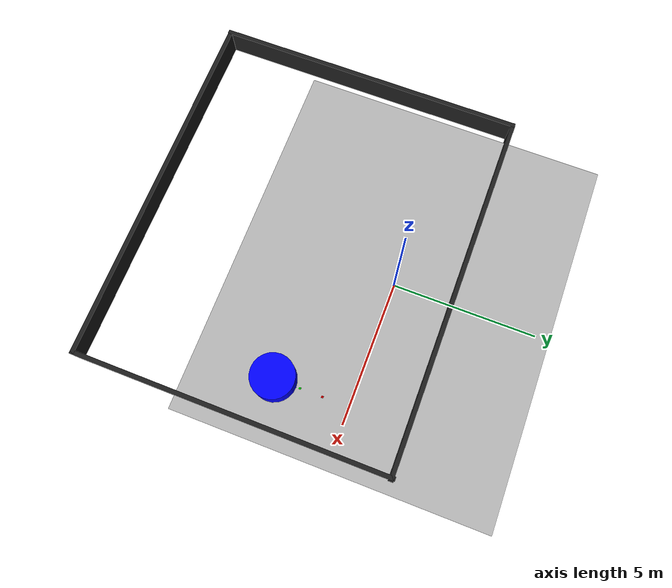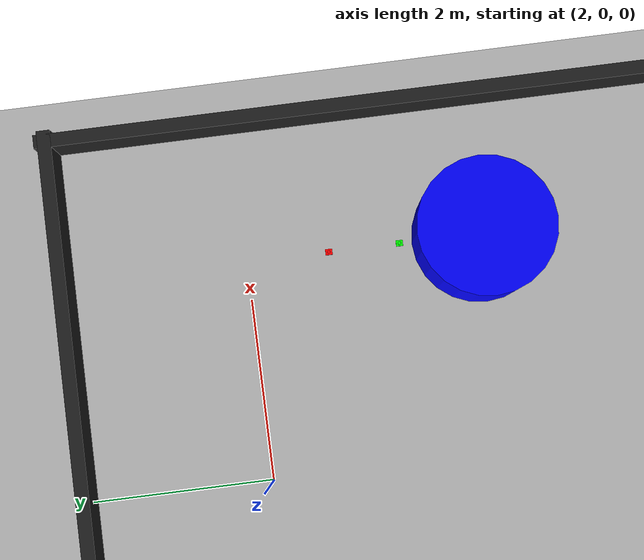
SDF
<sdf version="1.4">
 <world name="default">
  <scene><ambient>0.8 0.8 0.8 1</ambient><background>0.7 0.7 0.7 1</background><shadows>true</shadows></scene>
  <include><uri>model://sun</uri><pose>-2.0 2.0 2.0 0 0 0</pose></include>
  <include><uri>model://salinha/pisosala</uri><pose>0 0 0 0 0 -1.57</pose></include>
  <include><uri>model://salinha/parede</uri><pose>-0.53 -3.51 0 0 0 0</pose></include>
  <include><uri>model://salinha/base</uri><pose>4.73 -1.73 0.0 0 0 0</pose></include>
  <include><uri>model://salinha/cilindro_vermelho</uri><pose>4.406 -0.915 0.15 0 0 0</pose></include>
  <include><uri>model://salinha/cilindro_azul</uri><pose>4.406 -2.6 0.15 0 0 0</pose></include>
  <include><uri>model://salinha/cilindro_verde</uri><pose>4.406 -1.699 0.15 0 0 0</pose></include>
  <physics type="ode">
   <real_time_update_rate>1000.0</real_time_update_rate>
   <max_step_size>0.001</max_step_size>
   <real_time_factor>1</real_time_factor>
   <ode>
    <solver>
     <type>quick</type>
     <iters>150</iters>
     <precon_iters>0</precon_iters>
     <sor>1.400000</sor>
     <use_dynamic_moi_rescaling>1</use_dynamic_moi_rescaling>
    </solver>
    <constraints>
     <cfm>0.00001</cfm>
     <erp>0.2</erp>
     <contact_max_correcting_vel>2000.000000</contact_max_correcting_vel>
     <contact_surface_layer>0.01000</contact_surface_layer>
    </constraints>
   </ode>
  </physics>
 </world>
</sdf>

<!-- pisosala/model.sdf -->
<sdf version="1.6">
  <model name="pisosala_forca">
    <static>true</static>
    <link name="course_link">
      <collision name="course_collision">
        <geometry>
          <plane>
            <normal>0 0 1</normal>
            <size>10 13</size>
          </plane>
        </geometry>
        <surface>
          <friction>
            <ode>
              <mu>100</mu>
              <mu2>50</mu2>
            </ode>
          </friction>
        </surface>
      </collision>
      <visual name="course_visual">
        <cast_shadows>false</cast_shadows>
        <geometry>
          <mesh>
            <uri>model://forca/pisosala/materials/scripts/piso.dae</uri>
            <scale>1 1 1</scale>
          </mesh>
        </geometry>
      </visual>
    </link>
  </model>
</sdf>

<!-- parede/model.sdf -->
<sdf version='1.6'>
  <model name='parede'>
    <link name='Wall_0'>
      <pose frame=''>-0.004951 -5.56026 0 0 -0 0</pose>
      <self_collide>0</self_collide>
      <enable_wind>0</enable_wind>
      <kinematic>0</kinematic>
      <inertial>
        <inertia>
          <ixx>0</ixx>
          <ixy>0</ixy>
          <ixz>0</ixz>
          <iyy>0</iyy>
          <iyz>0</iyz>
          <izz>0</izz>
        </inertia>
        <mass>0</mass>
        <pose frame=''>0 0 0 0 -0 0</pose>
      </inertial>
      <gravity>1</gravity>
      <visual name='Wall_0_Visual'>
        <pose frame=''>0 0 0 0 -0 0</pose>
        <geometry>
          <box>
            <size>13.1161 0.15 1.0</size>
          </box>
        </geometry>
        <material>
          <script>
            <uri>file://media/materials/scripts/gazebo.material</uri>
            <name>Gazebo/Black</name>
          </script>
          <ambient>0 0 0 1</ambient>
          <shader type='vertex'>
            <normal_map>__default__</normal_map>
          </shader>
          <diffuse>0 0 0 1</diffuse>
          <specular>0 0 0 1</specular>
          <emissive>0 0 0 1</emissive>
        </material>
        <meta>
          <layer>0</layer>
        </meta>
        <transparency>0</transparency>
        <cast_shadows>1</cast_shadows>
      </visual>
      <collision name='Wall_0_Collision'>
        <laser_retro>0</laser_retro>
        <max_contacts>10</max_contacts>
        <pose frame=''>0 0 0 0 -0 0</pose>
        <geometry>
          <box>
            <size>13.1161 0.15 1.0</size>
          </box>
        </geometry>
        <surface>
          <friction>
            <ode>
              <mu>1</mu>
              <mu2>1</mu2>
              <fdir1>0 0 0</fdir1>
              <slip1>0</slip1>
              <slip2>0</slip2>
            </ode>
            <torsional>
              <coefficient>1</coefficient>
              <patch_radius>0</patch_radius>
              <surface_radius>0</surface_radius>
              <use_patch_radius>1</use_patch_radius>
              <ode>
                <slip>0</slip>
              </ode>
            </torsional>
          </friction>
          <bounce>
            <restitution_coefficient>0</restitution_coefficient>
            <threshold>1e+06</threshold>
          </bounce>
          <contact>
            <collide_without_contact>0</collide_without_contact>
            <collide_without_contact_bitmask>1</collide_without_contact_bitmask>
            <collide_bitmask>1</collide_bitmask>
            <ode>
              <soft_cfm>0</soft_cfm>
              <soft_erp>0.2</soft_erp>
              <kp>1e+13</kp>
              <kd>1</kd>
              <max_vel>0.01</max_vel>
              <min_depth>0</min_depth>
            </ode>
            <bullet>
              <split_impulse>1</split_impulse>
              <split_impulse_penetration_threshold>-0.01</split_impulse_penetration_threshold>
              <soft_cfm>0</soft_cfm>
              <soft_erp>0.2</soft_erp>
              <kp>1e+13</kp>
              <kd>1</kd>
            </bullet>
          </contact>
        </surface>
      </collision>
    </link>
    <link name='Wall_1'>
      <pose frame=''>0.061052 5.53717 0 0 -0 3.14</pose>
      <self_collide>0</self_collide>
      <enable_wind>0</enable_wind>
      <kinematic>0</kinematic>
      <inertial>
        <inertia>
          <ixx>0</ixx>
          <ixy>0</ixy>
          <ixz>0</ixz>
          <iyy>0</iyy>
          <iyz>0</iyz>
          <izz>0</izz>
        </inertia>
        <mass>0</mass>
        <pose frame=''>0 0 0 0 -0 0</pose>
      </inertial>
      <gravity>1</gravity>
      <visual name='Wall_1_Visual'>
        <pose frame=''>0 0 0 0 -0 0</pose>
        <geometry>
          <box>
            <size>13.1161 0.15 1.0</size>
          </box>
        </geometry>
        <material>
          <script>
            <uri>file://media/materials/scripts/gazebo.material</uri>
            <name>Gazebo/Black</name>
          </script>
          <ambient>0 0 0 1</ambient>
          <shader type='vertex'>
            <normal_map>__default__</normal_map>
          </shader>
          <diffuse>0 0 0 1</diffuse>
          <specular>0 0 0 1</specular>
          <emissive>0 0 0 1</emissive>
        </material>
        <meta>
          <layer>0</layer>
        </meta>
        <transparency>0</transparency>
        <cast_shadows>1</cast_shadows>
      </visual>
      <collision name='Wall_1_Collision'>
        <laser_retro>0</laser_retro>
        <max_contacts>10</max_contacts>
        <pose frame=''>0 0 0 0 -0 0</pose>
        <geometry>
          <box>
            <size>13.1161 0.15 1.0</size>
          </box>
        </geometry>
        <surface>
          <friction>
            <ode>
              <mu>1</mu>
              <mu2>1</mu2>
              <fdir1>0 0 0</fdir1>
              <slip1>0</slip1>
              <slip2>0</slip2>
            </ode>
            <torsional>
              <coefficient>1</coefficient>
              <patch_radius>0</patch_radius>
              <surface_radius>0</surface_radius>
              <use_patch_radius>1</use_patch_radius>
              <ode>
                <slip>0</slip>
              </ode>
            </torsional>
          </friction>
          <bounce>
            <restitution_coefficient>0</restitution_coefficient>
            <threshold>1e+06</threshold>
          </bounce>
          <contact>
            <collide_without_contact>0</collide_without_contact>
            <collide_without_contact_bitmask>1</collide_without_contact_bitmask>
            <collide_bitmask>1</collide_bitmask>
            <ode>
              <soft_cfm>0</soft_cfm>
              <soft_erp>0.2</soft_erp>
              <kp>1e+13</kp>
              <kd>1</kd>
              <max_vel>0.01</max_vel>
              <min_depth>0</min_depth>
            </ode>
            <bullet>
              <split_impulse>1</split_impulse>
              <split_impulse_penetration_threshold>-0.01</split_impulse_penetration_threshold>
              <soft_cfm>0</soft_cfm>
              <soft_erp>0.2</soft_erp>
              <kp>1e+13</kp>
              <kd>1</kd>
            </bullet>
          </contact>
        </surface>
      </collision>
    </link>
    <link name='Wall_2'>
      <pose frame=''>6.5 0.005899 0 0 -0 1.57</pose>
      <self_collide>0</self_collide>
      <enable_wind>0</enable_wind>
      <kinematic>0</kinematic>
      <inertial>
        <inertia>
          <ixx>0</ixx>
          <ixy>0</ixy>
          <ixz>0</ixz>
          <iyy>0</iyy>
          <iyz>0</iyz>
          <izz>0</izz>
        </inertia>
        <mass>0</mass>
        <pose frame=''>0 0 0 0 -0 0</pose>
      </inertial>
      <gravity>1</gravity>
      <visual name='Wall_2_Visual'>
        <pose frame=''>0 0 0 0 -0 0</pose>
        <geometry>
          <box>
            <size>11.2703 0.15 1.0</size>
          </box>
        </geometry>
        <material>
          <script>
            <uri>file://media/materials/scripts/gazebo.material</uri>
            <name>Gazebo/Black</name>
          </script>
          <ambient>0 0 0 1</ambient>
          <shader type='vertex'>
            <normal_map>__default__</normal_map>
          </shader>
          <diffuse>0 0 0 1</diffuse>
          <specular>0 0 0 1</specular>
          <emissive>0 0 0 1</emissive>
        </material>
        <meta>
          <layer>0</layer>
        </meta>
        <transparency>0</transparency>
        <cast_shadows>1</cast_shadows>
      </visual>
      <collision name='Wall_2_Collision'>
        <laser_retro>0</laser_retro>
        <max_contacts>10</max_contacts>
        <pose frame=''>0 0 0 0 -0 0</pose>
        <geometry>
          <box>
            <size>11.2703 0.15 1.0</size>
          </box>
        </geometry>
        <surface>
          <friction>
            <ode>
              <mu>1</mu>
              <mu2>1</mu2>
              <fdir1>0 0 0</fdir1>
              <slip1>0</slip1>
              <slip2>0</slip2>
            </ode>
            <torsional>
              <coefficient>1</coefficient>
              <patch_radius>0</patch_radius>
              <surface_radius>0</surface_radius>
              <use_patch_radius>1</use_patch_radius>
              <ode>
                <slip>0</slip>
              </ode>
            </torsional>
          </friction>
          <bounce>
            <restitution_coefficient>0</restitution_coefficient>
            <threshold>1e+06</threshold>
          </bounce>
          <contact>
            <collide_without_contact>0</collide_without_contact>
            <collide_without_contact_bitmask>1</collide_without_contact_bitmask>
            <collide_bitmask>1</collide_bitmask>
            <ode>
              <soft_cfm>0</soft_cfm>
              <soft_erp>0.2</soft_erp>
              <kp>1e+13</kp>
              <kd>1</kd>
              <max_vel>0.01</max_vel>
              <min_depth>0</min_depth>
            </ode>
            <bullet>
              <split_impulse>1</split_impulse>
              <split_impulse_penetration_threshold>-0.01</split_impulse_penetration_threshold>
              <soft_cfm>0</soft_cfm>
              <soft_erp>0.2</soft_erp>
              <kp>1e+13</kp>
              <kd>1</kd>
            </bullet>
          </contact>
        </surface>
      </collision>
    </link>
    <link name='Wall_3'>
      <pose frame=''>-6.49998 -0.025026 0 0 0 -1.57</pose>
      <self_collide>0</self_collide>
      <enable_wind>0</enable_wind>
      <kinematic>0</kinematic>
      <inertial>
        <inertia>
          <ixx>0</ixx>
          <ixy>0</ixy>
          <ixz>0</ixz>
          <iyy>0</iyy>
          <iyz>0</iyz>
          <izz>0</izz>
        </inertia>
        <mass>0</mass>
        <pose frame=''>0 0 0 0 -0 0</pose>
      </inertial>
      <gravity>1</gravity>
      <visual name='Wall_3_Visual'>
        <pose frame=''>0 0 0 0 -0 0</pose>
        <geometry>
          <box>
            <size>11.2703 0.15 1.0</size>
          </box>
        </geometry>
        <material>
          <script>
            <uri>file://media/materials/scripts/gazebo.material</uri>
            <name>Gazebo/Black</name>
          </script>
          <ambient>0 0 0 1</ambient>
          <shader type='vertex'>
            <normal_map>__default__</normal_map>
          </shader>
          <diffuse>0 0 0 1</diffuse>
          <specular>0 0 0 1</specular>
          <emissive>0 0 0 1</emissive>
        </material>
        <meta>
          <layer>0</layer>
        </meta>
        <transparency>0</transparency>
        <cast_shadows>1</cast_shadows>
      </visual>
      <collision name='Wall_3_Collision'>
        <laser_retro>0</laser_retro>
        <max_contacts>10</max_contacts>
        <pose frame=''>0 0 0 0 -0 0</pose>
        <geometry>
          <box>
            <size>11.2703 0.15 1.0</size>
          </box>
        </geometry>
        <surface>
          <friction>
            <ode>
              <mu>1</mu>
              <mu2>1</mu2>
              <fdir1>0 0 0</fdir1>
              <slip1>0</slip1>
              <slip2>0</slip2>
            </ode>
            <torsional>
              <coefficient>1</coefficient>
              <patch_radius>0</patch_radius>
              <surface_radius>0</surface_radius>
              <use_patch_radius>1</use_patch_radius>
              <ode>
                <slip>0</slip>
              </ode>
            </torsional>
          </friction>
          <bounce>
            <restitution_coefficient>0</restitution_coefficient>
            <threshold>1e+06</threshold>
          </bounce>
          <contact>
            <collide_without_contact>0</collide_without_contact>
            <collide_without_contact_bitmask>1</collide_without_contact_bitmask>
            <collide_bitmask>1</collide_bitmask>
            <ode>
              <soft_cfm>0</soft_cfm>
              <soft_erp>0.2</soft_erp>
              <kp>1e+13</kp>
              <kd>1</kd>
              <max_vel>0.01</max_vel>
              <min_depth>0</min_depth>
            </ode>
            <bullet>
              <split_impulse>1</split_impulse>
              <split_impulse_penetration_threshold>-0.01</split_impulse_penetration_threshold>
              <soft_cfm>0</soft_cfm>
              <soft_erp>0.2</soft_erp>
              <kp>1e+13</kp>
              <kd>1</kd>
            </bullet>
          </contact>
        </surface>
      </collision>
    </link>
    <static>1</static>
    <allow_auto_disable>1</allow_auto_disable>
  </model>
</sdf>

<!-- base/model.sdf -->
<sdf version='1.6'>
  <model name='base'>
    <link name='link_0'>
      <inertial>
        <mass>0.03</mass>
        <inertia>
          <ixx>0.004375</ixx>
          <ixy>0</ixy>
          <ixz>0</ixz>
          <iyy>0.004375</iyy>
          <iyz>0</iyz>
          <izz>0.00375</izz>
        </inertia>
        <pose frame=''>0 0 0 0 -0 0</pose>
      </inertial>
      <pose frame=''>0.003805 -0.001087 -0.087331 0 -0 0</pose>
      <gravity>1</gravity>
      <self_collide>0</self_collide>
      <kinematic>0</kinematic>
      <enable_wind>0</enable_wind>
      <visual name='visual'>
        <pose frame=''>0 0 0 0 -0 0</pose>
        <geometry>
          <cylinder>
            <radius>0.1</radius>
            <length>0.1</length>
          </cylinder>
        </geometry>
      </visual>
      <collision name='collision'>
        <laser_retro>0</laser_retro>
        <max_contacts>10</max_contacts>
        <pose frame=''>0 0 0 0 -0 0</pose>
        <geometry>
          <cylinder>
            <radius>0.1</radius>
            <length>0.1</length>
          </cylinder>
        </geometry>
        <surface>
          <friction>
            <ode>
              <mu>1</mu>
              <mu2>1</mu2>
              <fdir1>0 0 0</fdir1>
              <slip1>0</slip1>
              <slip2>0</slip2>
            </ode>
            <torsional>
              <coefficient>1</coefficient>
              <patch_radius>0</patch_radius>
              <surface_radius>0</surface_radius>
              <use_patch_radius>1</use_patch_radius>
              <ode>
                <slip>0</slip>
              </ode>
            </torsional>
          </friction>
          <bounce>
            <restitution_coefficient>0</restitution_coefficient>
            <threshold>1e+06</threshold>
          </bounce>
          <contact>
            <collide_without_contact>0</collide_without_contact>
            <collide_without_contact_bitmask>1</collide_without_contact_bitmask>
            <collide_bitmask>1</collide_bitmask>
            <ode>
              <soft_cfm>0</soft_cfm>
              <soft_erp>0.2</soft_erp>
              <kp>1e+13</kp>
              <kd>1</kd>
              <max_vel>0.01</max_vel>
              <min_depth>0</min_depth>
            </ode>
            <bullet>
              <split_impulse>1</split_impulse>
              <split_impulse_penetration_threshold>-0.01</split_impulse_penetration_threshold>
              <soft_cfm>0</soft_cfm>
              <soft_erp>0.2</soft_erp>
              <kp>1e+13</kp>
              <kd>1</kd>
            </bullet>
          </contact>
        </surface>
      </collision>
    </link>

</model>

</sdf>

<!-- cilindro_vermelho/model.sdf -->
<sdf version='1.7'>
  <model name='cilindro_vermelho'>
    <link name='link_0'>
      <inertial>
        <mass>0.00018493</mass>
        <inertia>
          <ixx>4.1e-07</ixx>
          <ixy>0</ixy>
          <ixz>0</ixz>
          <iyy>4.1e-07</iyy>
          <iyz>0</iyz>
          <izz>3e-08</izz>
        </inertia>
        <pose>0 0 0 0 -0 0</pose>
      </inertial>
      <pose>0 0 0 0 -0 0</pose>
      <gravity>1</gravity>
      <self_collide>0</self_collide>
      <kinematic>0</kinematic>
      <enable_wind>0</enable_wind>
      <visual name='visual'>
        <pose>0 0 0 0 -0 0</pose>
        <geometry>
          <cylinder>
            <radius>0.0171725</radius>
            <length>0.159571</length>
          </cylinder>
        </geometry>
        <material>
          <lighting>1</lighting>
          <script>
            <uri>file://media/materials/scripts/gazebo.material</uri>
            <name>Gazebo/Grey</name>
          </script>
          <shader type='pixel'>
            <normal_map>__default__</normal_map>
          </shader>
          <ambient>1 0 0 0</ambient>
          <diffuse>1 0 0 1</diffuse>
          <specular>1 0 0 1</specular>
          <emissive>0 0 0 1</emissive>
        </material>
        <transparency>0</transparency>
        <cast_shadows>1</cast_shadows>
      </visual>
      <collision name='collision'>
        <laser_retro>0</laser_retro>
        <max_contacts>10</max_contacts>
        <pose>0 0 0 0 -0 0</pose>
        <geometry>
          <cylinder>
            <radius>0.017173</radius>
            <length>0.159571</length>
          </cylinder>
        </geometry>
        <surface>
          <friction>
            <ode>
              <mu>1</mu>
              <mu2>1</mu2>
              <fdir1>0 0 0</fdir1>
              <slip1>0</slip1>
              <slip2>0</slip2>
            </ode>
            <torsional>
              <coefficient>1</coefficient>
              <patch_radius>0</patch_radius>
              <surface_radius>0</surface_radius>
              <use_patch_radius>1</use_patch_radius>
              <ode>
                <slip>0</slip>
              </ode>
            </torsional>
          </friction>
          <bounce>
            <restitution_coefficient>0</restitution_coefficient>
            <threshold>1e+06</threshold>
          </bounce>
          <contact>
            <collide_without_contact>0</collide_without_contact>
            <collide_without_contact_bitmask>1</collide_without_contact_bitmask>
            <collide_bitmask>1</collide_bitmask>
            <ode>
              <soft_cfm>0</soft_cfm>
              <soft_erp>0.2</soft_erp>
              <kp>1e+13</kp>
              <kd>1</kd>
              <max_vel>0.01</max_vel>
              <min_depth>0</min_depth>
            </ode>
            <bullet>
              <split_impulse>1</split_impulse>
              <split_impulse_penetration_threshold>-0.01</split_impulse_penetration_threshold>
              <soft_cfm>0</soft_cfm>
              <soft_erp>0.2</soft_erp>
              <kp>1e+13</kp>
              <kd>1</kd>
            </bullet>
          </contact>
        </surface>
      </collision>
    </link>
    <link name='link_0_0_clone_0'>
      <inertial>
        <mass>0.00012262</mass>
        <inertia>
          <ixx>6e-08</ixx>
          <ixy>0</ixy>
          <ixz>0</ixz>
          <iyy>5e-08</iyy>
          <iyz>0</iyz>
          <izz>1e-07</izz>
        </inertia>
        <pose>0 0 0 0 -0 0</pose>
      </inertial>
      <pose>-0 0 0.065842 0 -0 0</pose>
      <gravity>1</gravity>
      <self_collide>0</self_collide>
      <kinematic>0</kinematic>
      <enable_wind>0</enable_wind>
      <visual name='visual_0'>
        <pose>0 0 0 0 -0 0</pose>
        <geometry>
          <box>
            <size>0.06472 0.075173 0.025188</size>
          </box>
        </geometry>
        <material>
          <lighting>1</lighting>
          <script>
            <uri>file://media/materials/scripts/gazebo.material</uri>
            <name>Gazebo/Grey</name>
          </script>
          <shader type='pixel'>
            <normal_map>__default__</normal_map>
          </shader>
          <ambient>1 0 0 0</ambient>
          <diffuse>1 0 0 1</diffuse>
          <specular>1 0 0 1</specular>
          <emissive>0 0 0 1</emissive>
        </material>
        <transparency>0</transparency>
        <cast_shadows>1</cast_shadows>
      </visual>
      <collision name='collision'>
        <laser_retro>0</laser_retro>
        <max_contacts>10</max_contacts>
        <pose>0 0 0 0 -0 0</pose>
        <geometry>
          <box>
            <size>0.06472 0.075173 0.025188</size>
          </box>
        </geometry>
        <surface>
          <friction>
            <ode>
              <mu>1</mu>
              <mu2>1</mu2>
              <fdir1>0 0 0</fdir1>
              <slip1>0</slip1>
              <slip2>0</slip2>
            </ode>
            <torsional>
              <coefficient>1</coefficient>
              <patch_radius>0</patch_radius>
              <surface_radius>0</surface_radius>
              <use_patch_radius>1</use_patch_radius>
              <ode>
                <slip>0</slip>
              </ode>
            </torsional>
          </friction>
          <bounce>
            <restitution_coefficient>0</restitution_coefficient>
            <threshold>1e+06</threshold>
          </bounce>
          <contact>
            <collide_without_contact>0</collide_without_contact>
            <collide_without_contact_bitmask>1</collide_without_contact_bitmask>
            <collide_bitmask>1</collide_bitmask>
            <ode>
              <soft_cfm>0</soft_cfm>
              <soft_erp>0.2</soft_erp>
              <kp>1e+13</kp>
              <kd>1</kd>
              <max_vel>0.01</max_vel>
              <min_depth>0</min_depth>
            </ode>
            <bullet>
              <split_impulse>1</split_impulse>
              <split_impulse_penetration_threshold>-0.01</split_impulse_penetration_threshold>
              <soft_cfm>0</soft_cfm>
              <soft_erp>0.2</soft_erp>
              <kp>1e+13</kp>
              <kd>1</kd>
            </bullet>
          </contact>
        </surface>
      </collision>
    </link>
    <joint name='link_0_0_clone_0_JOINT_3' type='fixed'>
      <parent>link_0_0_clone_0</parent>
      <child>link_0</child>
      <pose>0 0 0 0 -0 0</pose>
      <physics>
        <ode>
          <limit>
            <cfm>0</cfm>
            <erp>0.2</erp>
          </limit>
          <suspension>
            <cfm>0</cfm>
            <erp>0.2</erp>
          </suspension>
        </ode>
      </physics>
    </joint>
    <static>0</static>
    <allow_auto_disable>1</allow_auto_disable>
  </model>
</sdf>

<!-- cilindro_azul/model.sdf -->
<sdf version='1.6'>
  <model name='cilindro_azul'>
    <link name='link'>
      <inertial>
        <mass>1</mass>
        <inertia>
          <ixx>0.145833</ixx>
          <ixy>0</ixy>
          <ixz>0</ixz>
          <iyy>0.145833</iyy>
          <iyz>0</iyz>
          <izz>0.125</izz>
        </inertia>
        <pose frame=''>0 0 0 0 -0 0</pose>
      </inertial>
      <self_collide>0</self_collide>
      <enable_wind>0</enable_wind>
      <kinematic>0</kinematic>
      <pose frame=''>0 0 0 0 -0 0</pose>
      <gravity>1</gravity>
      <visual name='visual'>
        <geometry>
          <cylinder>
            <radius>0.75</radius>
            <length>1.5</length>
          </cylinder>
        </geometry>
        <material>
          <script>
            <name>Gazebo/Grey</name>
            <uri>file://media/materials/scripts/gazebo.material</uri>
          </script>
          <shader type='vertex'>
            <normal_map>__default__</normal_map>
          </shader>
          <ambient>0 0 1 1</ambient>
          <diffuse>0 0 1 1</diffuse>
          <specular>0 0 1 1</specular>
          <emissive>0 0 0 1</emissive>
        </material>
        <pose frame=''>0 0 0 0 -0 0</pose>
        <transparency>0</transparency>
        <cast_shadows>1</cast_shadows>
      </visual>
      <collision name='collision'>
        <laser_retro>0</laser_retro>
        <max_contacts>10</max_contacts>
        <pose frame=''>0 0 0 0 -0 0</pose>
        <geometry>
          <cylinder>
            <radius>0.75</radius>
            <length>1.5</length>
          </cylinder>
        </geometry>
        <surface>
          <friction>
            <ode>
              <mu>1</mu>
              <mu2>1</mu2>
              <fdir1>0 0 0</fdir1>
              <slip1>0</slip1>
              <slip2>0</slip2>
            </ode>
            <torsional>
              <coefficient>1</coefficient>
              <patch_radius>0</patch_radius>
              <surface_radius>0</surface_radius>
              <use_patch_radius>1</use_patch_radius>
              <ode>
                <slip>0</slip>
              </ode>
            </torsional>
          </friction>
          <bounce>
            <restitution_coefficient>0</restitution_coefficient>
            <threshold>1e+06</threshold>
          </bounce>
          <contact>
            <collide_without_contact>0</collide_without_contact>
            <collide_without_contact_bitmask>1</collide_without_contact_bitmask>
            <collide_bitmask>1</collide_bitmask>
            <ode>
              <soft_cfm>0</soft_cfm>
              <soft_erp>0.2</soft_erp>
              <kp>1e+13</kp>
              <kd>1</kd>
              <max_vel>0.01</max_vel>
              <min_depth>0</min_depth>
            </ode>
            <bullet>
              <split_impulse>1</split_impulse>
              <split_impulse_penetration_threshold>-0.01</split_impulse_penetration_threshold>
              <soft_cfm>0</soft_cfm>
              <soft_erp>0.2</soft_erp>
              <kp>1e+13</kp>
              <kd>1</kd>
            </bullet>
          </contact>
        </surface>
      </collision>
    </link>
    <static>0</static>
    <allow_auto_disable>1</allow_auto_disable>
  </model>
</sdf>

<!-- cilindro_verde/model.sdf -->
<sdf version='1.7'>
  <model name='cilindro_verde'>
    <link name='link_0_0_clone'>
      <inertial>
        <mass>0.00012262</mass>
        <inertia>
          <ixx>6e-08</ixx>
          <ixy>0</ixy>
          <ixz>0</ixz>
          <iyy>5e-08</iyy>
          <iyz>0</iyz>
          <izz>1e-07</izz>
        </inertia>
        <pose>0 0 0 0 -0 0</pose>
      </inertial>
      <pose>0 -0 0.062752 0 -0 0</pose>
      <gravity>1</gravity>
      <self_collide>0</self_collide>
      <kinematic>0</kinematic>
      <enable_wind>0</enable_wind>
      <visual name='visual_0'>
        <pose>0 0 0 0 -0 0</pose>
        <geometry>
          <box>
            <size>0.06472 0.075173 0.025188</size>
          </box>
        </geometry>
        <material>
          <lighting>1</lighting>
          <script>
            <uri>file://media/materials/scripts/gazebo.material</uri>
            <name>Gazebo/Grey</name>
          </script>
          <shader type='pixel'>
            <normal_map>__default__</normal_map>
          </shader>
          <ambient>0 1 0 0</ambient>
          <diffuse>0 1 0 1</diffuse>
          <specular>0 1 0 1</specular>
          <emissive>0 0 0 1</emissive>
        </material>
        <transparency>0</transparency>
        <cast_shadows>1</cast_shadows>
      </visual>
      <collision name='collision'>
        <laser_retro>0</laser_retro>
        <max_contacts>10</max_contacts>
        <pose>0 0 0 0 -0 0</pose>
        <geometry>
          <box>
            <size>0.06472 0.075173 0.025188</size>
          </box>
        </geometry>
        <surface>
          <friction>
            <ode>
              <mu>1</mu>
              <mu2>1</mu2>
              <fdir1>0 0 0</fdir1>
              <slip1>0</slip1>
              <slip2>0</slip2>
            </ode>
            <torsional>
              <coefficient>1</coefficient>
              <patch_radius>0</patch_radius>
              <surface_radius>0</surface_radius>
              <use_patch_radius>1</use_patch_radius>
              <ode>
                <slip>0</slip>
              </ode>
            </torsional>
          </friction>
          <bounce>
            <restitution_coefficient>0</restitution_coefficient>
            <threshold>1e+06</threshold>
          </bounce>
          <contact>
            <collide_without_contact>0</collide_without_contact>
            <collide_without_contact_bitmask>1</collide_without_contact_bitmask>
            <collide_bitmask>1</collide_bitmask>
            <ode>
              <soft_cfm>0</soft_cfm>
              <soft_erp>0.2</soft_erp>
              <kp>1e+13</kp>
              <kd>1</kd>
              <max_vel>0.01</max_vel>
              <min_depth>0</min_depth>
            </ode>
            <bullet>
              <split_impulse>1</split_impulse>
              <split_impulse_penetration_threshold>-0.01</split_impulse_penetration_threshold>
              <soft_cfm>0</soft_cfm>
              <soft_erp>0.2</soft_erp>
              <kp>1e+13</kp>
              <kd>1</kd>
            </bullet>
          </contact>
        </surface>
      </collision>
    </link>
    <link name='link_0_clone'>
      <inertial>
        <mass>0.000209024</mass>
        <inertia>
          <ixx>4.6059e-07</ixx>
          <ixy>0</ixy>
          <ixz>0</ixz>
          <iyy>4.6059e-07</iyy>
          <iyz>0</iyz>
          <izz>3.41198e-08</izz>
        </inertia>
        <pose>0 0 0 0 -0 0</pose>
      </inertial>
      <pose>0 0 0 0 -0 0</pose>
      <gravity>1</gravity>
      <self_collide>0</self_collide>
      <kinematic>0</kinematic>
      <enable_wind>0</enable_wind>
      <visual name='visual'>
        <pose>0 0 0 0 -0 0</pose>
        <geometry>
          <cylinder>
            <radius>0.0180686</radius>
            <length>0.159571</length>
          </cylinder>
        </geometry>
        <material>
          <lighting>1</lighting>
          <script>
            <uri>file://media/materials/scripts/gazebo.material</uri>
            <name>Gazebo/Grey</name>
          </script>
          <shader type='pixel'>
            <normal_map>__default__</normal_map>
          </shader>
          <ambient>0 1 0 1</ambient>
          <diffuse>0 1 0 1</diffuse>
          <specular>0 1 0 1</specular>
          <emissive>0 0 0 1</emissive>
        </material>
        <transparency>0</transparency>
        <cast_shadows>1</cast_shadows>
      </visual>
      <collision name='collision'>
        <laser_retro>0</laser_retro>
        <max_contacts>10</max_contacts>
        <pose>0 0 0 0 -0 0</pose>
        <geometry>
          <cylinder>
            <radius>0.018068</radius>
            <length>0.159571</length>
          </cylinder>
        </geometry>
        <surface>
          <friction>
            <ode>
              <mu>1</mu>
              <mu2>1</mu2>
              <fdir1>0 0 0</fdir1>
              <slip1>0</slip1>
              <slip2>0</slip2>
            </ode>
            <torsional>
              <coefficient>1</coefficient>
              <patch_radius>0</patch_radius>
              <surface_radius>0</surface_radius>
              <use_patch_radius>1</use_patch_radius>
              <ode>
                <slip>0</slip>
              </ode>
            </torsional>
          </friction>
          <bounce>
            <restitution_coefficient>0</restitution_coefficient>
            <threshold>1e+06</threshold>
          </bounce>
          <contact>
            <collide_without_contact>0</collide_without_contact>
            <collide_without_contact_bitmask>1</collide_without_contact_bitmask>
            <collide_bitmask>1</collide_bitmask>
            <ode>
              <soft_cfm>0</soft_cfm>
              <soft_erp>0.2</soft_erp>
              <kp>1e+13</kp>
              <kd>1</kd>
              <max_vel>0.01</max_vel>
              <min_depth>0</min_depth>
            </ode>
            <bullet>
              <split_impulse>1</split_impulse>
              <split_impulse_penetration_threshold>-0.01</split_impulse_penetration_threshold>
              <soft_cfm>0</soft_cfm>
              <soft_erp>0.2</soft_erp>
              <kp>1e+13</kp>
              <kd>1</kd>
            </bullet>
          </contact>
        </surface>
      </collision>
    </link>
    <joint name='link_0_0_clone_JOINT_2' type='fixed'>
      <parent>link_0_0_clone</parent>
      <child>link_0_clone</child>
      <pose>0 0 0 0 -0 0</pose>
      <physics>
        <ode>
          <limit>
            <cfm>0</cfm>
            <erp>0.2</erp>
          </limit>
          <suspension>
            <cfm>0</cfm>
            <erp>0.2</erp>
          </suspension>
        </ode>
      </physics>
    </joint>
    <static>0</static>
    <allow_auto_disable>1</allow_auto_disable>
  </model>
</sdf>
